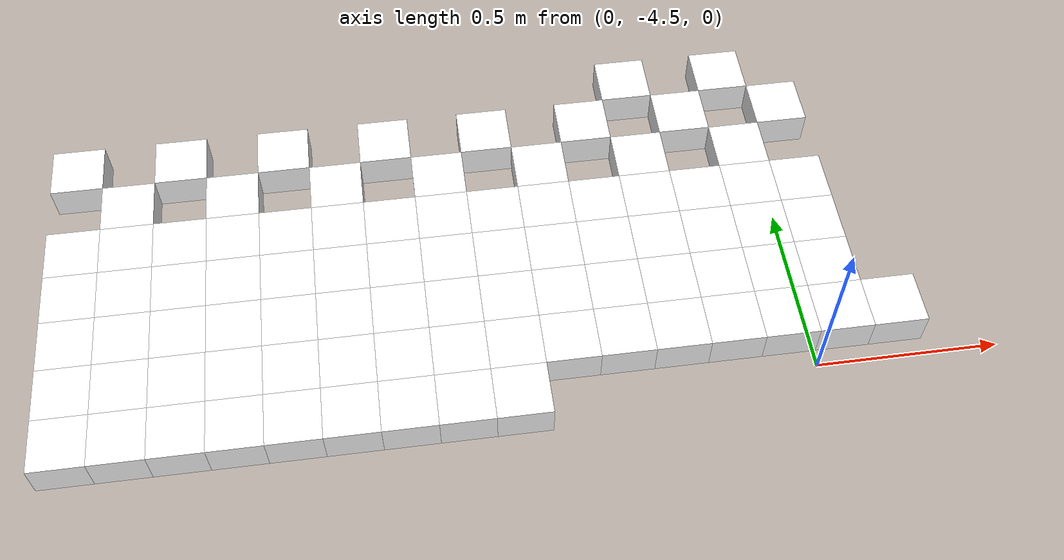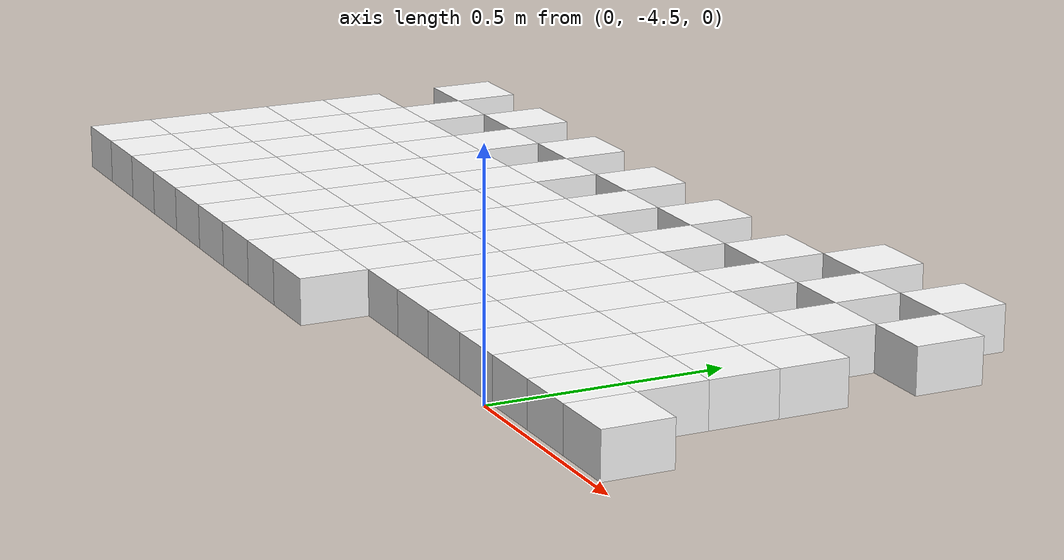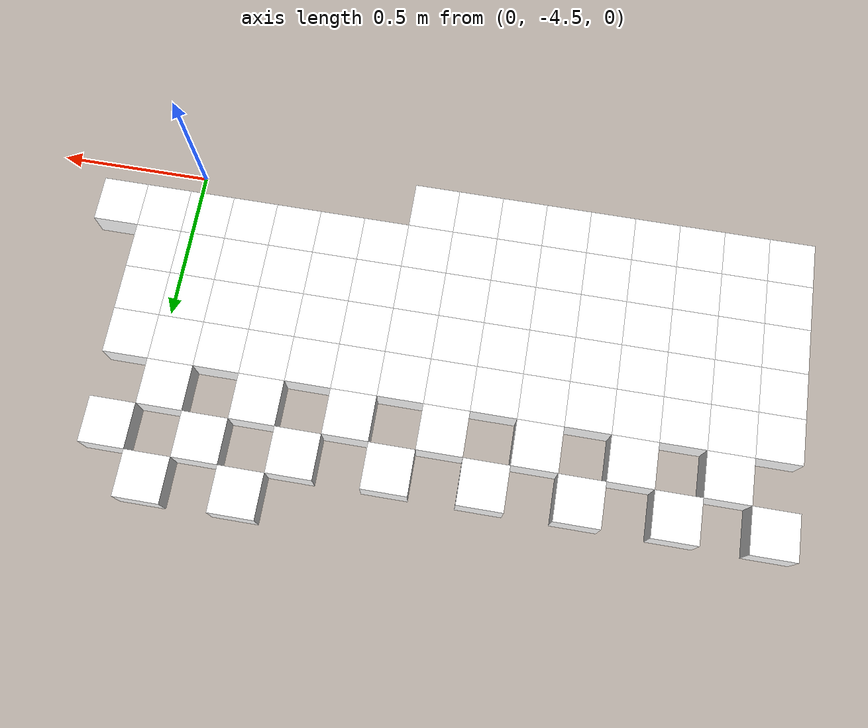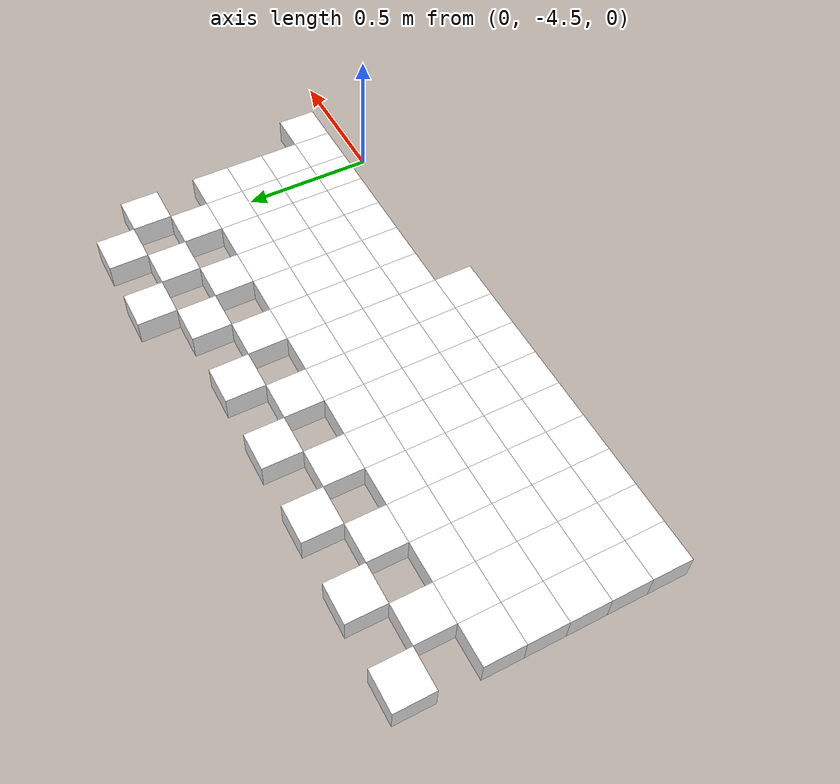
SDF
<sdf version="1.7">
 <world name="default">
  <include><uri>model://sun</uri></include>
  <model name="static_environment">
   <static>true</static>
   <link name="region_604">
    <pose>-2.0003737176152043 -3.599999983373231 0.0 0.0 0.0 4.7123</pose>
    <collision name="region_604_collision">
     <geometry><box><size>0.15 0.15 0.1</size></box></geometry>
     <surface><friction><ode><mu>1.0</mu><mu2>1.0</mu2></ode></friction></surface>
    </collision>
    <visual name="region_604_visual">
     <geometry><box><size>0.15 0.15 0.1</size></box></geometry>
     <material><ambient>1.0 1.0 1.0 1.0</ambient><diffuse>1.0 1.0 1.0 1.0</diffuse></material>
    </visual>
   </link>
   <link name="region_609">
    <pose>-1.8503870652667036 -3.750013329837104 0.0 0.0 0.0 4.7123</pose>
    <collision name="region_609_collision">
     <geometry><box><size>0.15 0.15 0.1</size></box></geometry>
     <surface><friction><ode><mu>1.0</mu><mu2>1.0</mu2></ode></friction></surface>
    </collision>
    <visual name="region_609_visual">
     <geometry><box><size>0.15 0.15 0.1</size></box></geometry>
     <material><ambient>1.0 1.0 1.0 1.0</ambient><diffuse>1.0 1.0 1.0 1.0</diffuse></material>
    </visual>
   </link>
   <link name="region_614">
    <pose>-1.700373718802831 -3.600026677488603 0.0 0.0 0.0 4.7123</pose>
    <collision name="region_614_collision">
     <geometry><box><size>0.15 0.15 0.1</size></box></geometry>
     <surface><friction><ode><mu>1.0</mu><mu2>1.0</mu2></ode></friction></surface>
    </collision>
    <visual name="region_614_visual">
     <geometry><box><size>0.15 0.15 0.1</size></box></geometry>
     <material><ambient>1.0 1.0 1.0 1.0</ambient><diffuse>1.0 1.0 1.0 1.0</diffuse></material>
    </visual>
   </link>
   <link name="region_619">
    <pose>-1.55038706645433 -3.7500400239524754 0.0 0.0 0.0 4.7123</pose>
    <collision name="region_619_collision">
     <geometry><box><size>0.15 0.15 0.1</size></box></geometry>
     <surface><friction><ode><mu>1.0</mu><mu2>1.0</mu2></ode></friction></surface>
    </collision>
    <visual name="region_619_visual">
     <geometry><box><size>0.15 0.15 0.1</size></box></geometry>
     <material><ambient>1.0 1.0 1.0 1.0</ambient><diffuse>1.0 1.0 1.0 1.0</diffuse></material>
    </visual>
   </link>
   <link name="region_624">
    <pose>-1.4003737199904573 -3.6000533716039747 0.0 0.0 0.0 4.7123</pose>
    <collision name="region_624_collision">
     <geometry><box><size>0.15 0.15 0.1</size></box></geometry>
     <surface><friction><ode><mu>1.0</mu><mu2>1.0</mu2></ode></friction></surface>
    </collision>
    <visual name="region_624_visual">
     <geometry><box><size>0.15 0.15 0.1</size></box></geometry>
     <material><ambient>1.0 1.0 1.0 1.0</ambient><diffuse>1.0 1.0 1.0 1.0</diffuse></material>
    </visual>
   </link>
   <link name="region_629">
    <pose>-1.2503870676419564 -3.7500667180678477 0.0 0.0 0.0 4.7123</pose>
    <collision name="region_629_collision">
     <geometry><box><size>0.15 0.15 0.1</size></box></geometry>
     <surface><friction><ode><mu>1.0</mu><mu2>1.0</mu2></ode></friction></surface>
    </collision>
    <visual name="region_629_visual">
     <geometry><box><size>0.15 0.15 0.1</size></box></geometry>
     <material><ambient>1.0 1.0 1.0 1.0</ambient><diffuse>1.0 1.0 1.0 1.0</diffuse></material>
    </visual>
   </link>
   <link name="region_634">
    <pose>-1.1003737211780837 -3.600080065719346 0.0 0.0 0.0 4.7123</pose>
    <collision name="region_634_collision">
     <geometry><box><size>0.15 0.15 0.1</size></box></geometry>
     <surface><friction><ode><mu>1.0</mu><mu2>1.0</mu2></ode></friction></surface>
    </collision>
    <visual name="region_634_visual">
     <geometry><box><size>0.15 0.15 0.1</size></box></geometry>
     <material><ambient>1.0 1.0 1.0 1.0</ambient><diffuse>1.0 1.0 1.0 1.0</diffuse></material>
    </visual>
   </link>
   <link name="region_639">
    <pose>-0.9503870688295828 -3.7500934121832192 0.0 0.0 0.0 4.7123</pose>
    <collision name="region_639_collision">
     <geometry><box><size>0.15 0.15 0.1</size></box></geometry>
     <surface><friction><ode><mu>1.0</mu><mu2>1.0</mu2></ode></friction></surface>
    </collision>
    <visual name="region_639_visual">
     <geometry><box><size>0.15 0.15 0.1</size></box></geometry>
     <material><ambient>1.0 1.0 1.0 1.0</ambient><diffuse>1.0 1.0 1.0 1.0</diffuse></material>
    </visual>
   </link>
   <link name="region_644">
    <pose>-0.8003737223657101 -3.6001067598347176 0.0 0.0 0.0 4.7123</pose>
    <collision name="region_644_collision">
     <geometry><box><size>0.15 0.15 0.1</size></box></geometry>
     <surface><friction><ode><mu>1.0</mu><mu2>1.0</mu2></ode></friction></surface>
    </collision>
    <visual name="region_644_visual">
     <geometry><box><size>0.15 0.15 0.1</size></box></geometry>
     <material><ambient>1.0 1.0 1.0 1.0</ambient><diffuse>1.0 1.0 1.0 1.0</diffuse></material>
    </visual>
   </link>
   <link name="region_649">
    <pose>-0.6503870700172092 -3.7501201062985907 0.0 0.0 0.0 4.7123</pose>
    <collision name="region_649_collision">
     <geometry><box><size>0.15 0.15 0.1</size></box></geometry>
     <surface><friction><ode><mu>1.0</mu><mu2>1.0</mu2></ode></friction></surface>
    </collision>
    <visual name="region_649_visual">
     <geometry><box><size>0.15 0.15 0.1</size></box></geometry>
     <material><ambient>1.0 1.0 1.0 1.0</ambient><diffuse>1.0 1.0 1.0 1.0</diffuse></material>
    </visual>
   </link>
   <link name="region_654">
    <pose>-0.5003737235533365 -3.60013345395009 0.0 0.0 0.0 4.7123</pose>
    <collision name="region_654_collision">
     <geometry><box><size>0.15 0.15 0.1</size></box></geometry>
     <surface><friction><ode><mu>1.0</mu><mu2>1.0</mu2></ode></friction></surface>
    </collision>
    <visual name="region_654_visual">
     <geometry><box><size>0.15 0.15 0.1</size></box></geometry>
     <material><ambient>1.0 1.0 1.0 1.0</ambient><diffuse>1.0 1.0 1.0 1.0</diffuse></material>
    </visual>
   </link>
   <link name="region_658">
    <pose>-0.3503603770894639 -3.4501468016015884 0.0 0.0 0.0 4.7123</pose>
    <collision name="region_658_collision">
     <geometry><box><size>0.15 0.15 0.1</size></box></geometry>
     <surface><friction><ode><mu>1.0</mu><mu2>1.0</mu2></ode></friction></surface>
    </collision>
    <visual name="region_658_visual">
     <geometry><box><size>0.15 0.15 0.1</size></box></geometry>
     <material><ambient>1.0 1.0 1.0 1.0</ambient><diffuse>1.0 1.0 1.0 1.0</diffuse></material>
    </visual>
   </link>
   <link name="region_659">
    <pose>-0.3503870712048358 -3.750146800413963 0.0 0.0 0.0 4.7123</pose>
    <collision name="region_659_collision">
     <geometry><box><size>0.15 0.15 0.1</size></box></geometry>
     <surface><friction><ode><mu>1.0</mu><mu2>1.0</mu2></ode></friction></surface>
    </collision>
    <visual name="region_659_visual">
     <geometry><box><size>0.15 0.15 0.1</size></box></geometry>
     <material><ambient>1.0 1.0 1.0 1.0</ambient><diffuse>1.0 1.0 1.0 1.0</diffuse></material>
    </visual>
   </link>
   <link name="region_664">
    <pose>-0.20037372474096315 -3.6001601480654615 0.0 0.0 0.0 4.7123</pose>
    <collision name="region_664_collision">
     <geometry><box><size>0.15 0.15 0.1</size></box></geometry>
     <surface><friction><ode><mu>1.0</mu><mu2>1.0</mu2></ode></friction></surface>
    </collision>
    <visual name="region_664_visual">
     <geometry><box><size>0.15 0.15 0.1</size></box></geometry>
     <material><ambient>1.0 1.0 1.0 1.0</ambient><diffuse>1.0 1.0 1.0 1.0</diffuse></material>
    </visual>
   </link>
   <link name="region_668">
    <pose>-0.0503603782770905 -3.45017349571696 0.0 0.0 0.0 4.7123</pose>
    <collision name="region_668_collision">
     <geometry><box><size>0.15 0.15 0.1</size></box></geometry>
     <surface><friction><ode><mu>1.0</mu><mu2>1.0</mu2></ode></friction></surface>
    </collision>
    <visual name="region_668_visual">
     <geometry><box><size>0.15 0.15 0.1</size></box></geometry>
     <material><ambient>1.0 1.0 1.0 1.0</ambient><diffuse>1.0 1.0 1.0 1.0</diffuse></material>
    </visual>
   </link>
   <link name="region_669">
    <pose>-0.05038707239246243 -3.7501734945293346 0.0 0.0 0.0 4.7123</pose>
    <collision name="region_669_collision">
     <geometry><box><size>0.15 0.15 0.1</size></box></geometry>
     <surface><friction><ode><mu>1.0</mu><mu2>1.0</mu2></ode></friction></surface>
    </collision>
    <visual name="region_669_visual">
     <geometry><box><size>0.15 0.15 0.1</size></box></geometry>
     <material><ambient>1.0 1.0 1.0 1.0</ambient><diffuse>1.0 1.0 1.0 1.0</diffuse></material>
    </visual>
   </link>
   <link name="region_674">
    <pose>0.09962627407141067 -3.600186842180833 0.0 0.0 0.0 4.7123</pose>
    <collision name="region_674_collision">
     <geometry><box><size>0.15 0.15 0.1</size></box></geometry>
     <surface><friction><ode><mu>1.0</mu><mu2>1.0</mu2></ode></friction></surface>
    </collision>
    <visual name="region_674_visual">
     <geometry><box><size>0.15 0.15 0.1</size></box></geometry>
     <material><ambient>1.0 1.0 1.0 1.0</ambient><diffuse>1.0 1.0 1.0 1.0</diffuse></material>
    </visual>
   </link>
   <link name="region_750">
    <pose>-2.0004004117305763 -3.8999999821856046 0.0 0.0 0.0 4.7123</pose>
    <collision name="region_750_collision">
     <geometry><box><size>0.15 0.15 0.1</size></box></geometry>
     <surface><friction><ode><mu>1.0</mu><mu2>1.0</mu2></ode></friction></surface>
    </collision>
    <visual name="region_750_visual">
     <geometry><box><size>0.15 0.15 0.1</size></box></geometry>
     <material><ambient>1.0 1.0 1.0 1.0</ambient><diffuse>1.0 1.0 1.0 1.0</diffuse></material>
    </visual>
   </link>
   <link name="region_751">
    <pose>-2.000413758788262 -4.049999981591792 0.0 0.0 0.0 4.7123</pose>
    <collision name="region_751_collision">
     <geometry><box><size>0.15 0.15 0.1</size></box></geometry>
     <surface><friction><ode><mu>1.0</mu><mu2>1.0</mu2></ode></friction></surface>
    </collision>
    <visual name="region_751_visual">
     <geometry><box><size>0.15 0.15 0.1</size></box></geometry>
     <material><ambient>1.0 1.0 1.0 1.0</ambient><diffuse>1.0 1.0 1.0 1.0</diffuse></material>
    </visual>
   </link>
   <link name="region_752">
    <pose>-2.000427105845948 -4.199999980997979 0.0 0.0 0.0 4.7123</pose>
    <collision name="region_752_collision">
     <geometry><box><size>0.15 0.15 0.1</size></box></geometry>
     <surface><friction><ode><mu>1.0</mu><mu2>1.0</mu2></ode></friction></surface>
    </collision>
    <visual name="region_752_visual">
     <geometry><box><size>0.15 0.15 0.1</size></box></geometry>
     <material><ambient>1.0 1.0 1.0 1.0</ambient><diffuse>1.0 1.0 1.0 1.0</diffuse></material>
    </visual>
   </link>
   <link name="region_753">
    <pose>-2.000440452903634 -4.349999980404166 0.0 0.0 0.0 4.7123</pose>
    <collision name="region_753_collision">
     <geometry><box><size>0.15 0.15 0.1</size></box></geometry>
     <surface><friction><ode><mu>1.0</mu><mu2>1.0</mu2></ode></friction></surface>
    </collision>
    <visual name="region_753_visual">
     <geometry><box><size>0.15 0.15 0.1</size></box></geometry>
     <material><ambient>1.0 1.0 1.0 1.0</ambient><diffuse>1.0 1.0 1.0 1.0</diffuse></material>
    </visual>
   </link>
   <link name="region_754">
    <pose>-2.0004537999613197 -4.499999979810354 0.0 0.0 0.0 4.7123</pose>
    <collision name="region_754_collision">
     <geometry><box><size>0.15 0.15 0.1</size></box></geometry>
     <surface><friction><ode><mu>1.0</mu><mu2>1.0</mu2></ode></friction></surface>
    </collision>
    <visual name="region_754_visual">
     <geometry><box><size>0.15 0.15 0.1</size></box></geometry>
     <material><ambient>1.0 1.0 1.0 1.0</ambient><diffuse>1.0 1.0 1.0 1.0</diffuse></material>
    </visual>
   </link>
   <link name="region_760">
    <pose>-1.8504004123243896 -3.9000133292432904 0.0 0.0 0.0 4.7123</pose>
    <collision name="region_760_collision">
     <geometry><box><size>0.15 0.15 0.1</size></box></geometry>
     <surface><friction><ode><mu>1.0</mu><mu2>1.0</mu2></ode></friction></surface>
    </collision>
    <visual name="region_760_visual">
     <geometry><box><size>0.15 0.15 0.1</size></box></geometry>
     <material><ambient>1.0 1.0 1.0 1.0</ambient><diffuse>1.0 1.0 1.0 1.0</diffuse></material>
    </visual>
   </link>
   <link name="region_761">
    <pose>-1.8504137593820753 -4.050013328649478 0.0 0.0 0.0 4.7123</pose>
    <collision name="region_761_collision">
     <geometry><box><size>0.15 0.15 0.1</size></box></geometry>
     <surface><friction><ode><mu>1.0</mu><mu2>1.0</mu2></ode></friction></surface>
    </collision>
    <visual name="region_761_visual">
     <geometry><box><size>0.15 0.15 0.1</size></box></geometry>
     <material><ambient>1.0 1.0 1.0 1.0</ambient><diffuse>1.0 1.0 1.0 1.0</diffuse></material>
    </visual>
   </link>
   <link name="region_762">
    <pose>-1.8504271064397613 -4.2000133280556655 0.0 0.0 0.0 4.7123</pose>
    <collision name="region_762_collision">
     <geometry><box><size>0.15 0.15 0.1</size></box></geometry>
     <surface><friction><ode><mu>1.0</mu><mu2>1.0</mu2></ode></friction></surface>
    </collision>
    <visual name="region_762_visual">
     <geometry><box><size>0.15 0.15 0.1</size></box></geometry>
     <material><ambient>1.0 1.0 1.0 1.0</ambient><diffuse>1.0 1.0 1.0 1.0</diffuse></material>
    </visual>
   </link>
   <link name="region_763">
    <pose>-1.850440453497447 -4.350013327461852 0.0 0.0 0.0 4.7123</pose>
    <collision name="region_763_collision">
     <geometry><box><size>0.15 0.15 0.1</size></box></geometry>
     <surface><friction><ode><mu>1.0</mu><mu2>1.0</mu2></ode></friction></surface>
    </collision>
    <visual name="region_763_visual">
     <geometry><box><size>0.15 0.15 0.1</size></box></geometry>
     <material><ambient>1.0 1.0 1.0 1.0</ambient><diffuse>1.0 1.0 1.0 1.0</diffuse></material>
    </visual>
   </link>
   <link name="region_764">
    <pose>-1.850453800555133 -4.500013326868039 0.0 0.0 0.0 4.7123</pose>
    <collision name="region_764_collision">
     <geometry><box><size>0.15 0.15 0.1</size></box></geometry>
     <surface><friction><ode><mu>1.0</mu><mu2>1.0</mu2></ode></friction></surface>
    </collision>
    <visual name="region_764_visual">
     <geometry><box><size>0.15 0.15 0.1</size></box></geometry>
     <material><ambient>1.0 1.0 1.0 1.0</ambient><diffuse>1.0 1.0 1.0 1.0</diffuse></material>
    </visual>
   </link>
   <link name="region_770">
    <pose>-1.7004004129182027 -3.900026676300976 0.0 0.0 0.0 4.7123</pose>
    <collision name="region_770_collision">
     <geometry><box><size>0.15 0.15 0.1</size></box></geometry>
     <surface><friction><ode><mu>1.0</mu><mu2>1.0</mu2></ode></friction></surface>
    </collision>
    <visual name="region_770_visual">
     <geometry><box><size>0.15 0.15 0.1</size></box></geometry>
     <material><ambient>1.0 1.0 1.0 1.0</ambient><diffuse>1.0 1.0 1.0 1.0</diffuse></material>
    </visual>
   </link>
   <link name="region_771">
    <pose>-1.7004137599758886 -4.050026675707164 0.0 0.0 0.0 4.7123</pose>
    <collision name="region_771_collision">
     <geometry><box><size>0.15 0.15 0.1</size></box></geometry>
     <surface><friction><ode><mu>1.0</mu><mu2>1.0</mu2></ode></friction></surface>
    </collision>
    <visual name="region_771_visual">
     <geometry><box><size>0.15 0.15 0.1</size></box></geometry>
     <material><ambient>1.0 1.0 1.0 1.0</ambient><diffuse>1.0 1.0 1.0 1.0</diffuse></material>
    </visual>
   </link>
   <link name="region_772">
    <pose>-1.7004271070335744 -4.200026675113351 0.0 0.0 0.0 4.7123</pose>
    <collision name="region_772_collision">
     <geometry><box><size>0.15 0.15 0.1</size></box></geometry>
     <surface><friction><ode><mu>1.0</mu><mu2>1.0</mu2></ode></friction></surface>
    </collision>
    <visual name="region_772_visual">
     <geometry><box><size>0.15 0.15 0.1</size></box></geometry>
     <material><ambient>1.0 1.0 1.0 1.0</ambient><diffuse>1.0 1.0 1.0 1.0</diffuse></material>
    </visual>
   </link>
   <link name="region_773">
    <pose>-1.7004404540912603 -4.350026674519538 0.0 0.0 0.0 4.7123</pose>
    <collision name="region_773_collision">
     <geometry><box><size>0.15 0.15 0.1</size></box></geometry>
     <surface><friction><ode><mu>1.0</mu><mu2>1.0</mu2></ode></friction></surface>
    </collision>
    <visual name="region_773_visual">
     <geometry><box><size>0.15 0.15 0.1</size></box></geometry>
     <material><ambient>1.0 1.0 1.0 1.0</ambient><diffuse>1.0 1.0 1.0 1.0</diffuse></material>
    </visual>
   </link>
   <link name="region_774">
    <pose>-1.7004538011489463 -4.500026673925725 0.0 0.0 0.0 4.7123</pose>
    <collision name="region_774_collision">
     <geometry><box><size>0.15 0.15 0.1</size></box></geometry>
     <surface><friction><ode><mu>1.0</mu><mu2>1.0</mu2></ode></friction></surface>
    </collision>
    <visual name="region_774_visual">
     <geometry><box><size>0.15 0.15 0.1</size></box></geometry>
     <material><ambient>1.0 1.0 1.0 1.0</ambient><diffuse>1.0 1.0 1.0 1.0</diffuse></material>
    </visual>
   </link>
   <link name="region_780">
    <pose>-1.550400413512016 -3.900040023358662 0.0 0.0 0.0 4.7123</pose>
    <collision name="region_780_collision">
     <geometry><box><size>0.15 0.15 0.1</size></box></geometry>
     <surface><friction><ode><mu>1.0</mu><mu2>1.0</mu2></ode></friction></surface>
    </collision>
    <visual name="region_780_visual">
     <geometry><box><size>0.15 0.15 0.1</size></box></geometry>
     <material><ambient>1.0 1.0 1.0 1.0</ambient><diffuse>1.0 1.0 1.0 1.0</diffuse></material>
    </visual>
   </link>
   <link name="region_781">
    <pose>-1.5504137605697017 -4.05004002276485 0.0 0.0 0.0 4.7123</pose>
    <collision name="region_781_collision">
     <geometry><box><size>0.15 0.15 0.1</size></box></geometry>
     <surface><friction><ode><mu>1.0</mu><mu2>1.0</mu2></ode></friction></surface>
    </collision>
    <visual name="region_781_visual">
     <geometry><box><size>0.15 0.15 0.1</size></box></geometry>
     <material><ambient>1.0 1.0 1.0 1.0</ambient><diffuse>1.0 1.0 1.0 1.0</diffuse></material>
    </visual>
   </link>
   <link name="region_782">
    <pose>-1.5504271076273877 -4.200040022171037 0.0 0.0 0.0 4.7123</pose>
    <collision name="region_782_collision">
     <geometry><box><size>0.15 0.15 0.1</size></box></geometry>
     <surface><friction><ode><mu>1.0</mu><mu2>1.0</mu2></ode></friction></surface>
    </collision>
    <visual name="region_782_visual">
     <geometry><box><size>0.15 0.15 0.1</size></box></geometry>
     <material><ambient>1.0 1.0 1.0 1.0</ambient><diffuse>1.0 1.0 1.0 1.0</diffuse></material>
    </visual>
   </link>
   <link name="region_783">
    <pose>-1.5504404546850736 -4.350040021577224 0.0 0.0 0.0 4.7123</pose>
    <collision name="region_783_collision">
     <geometry><box><size>0.15 0.15 0.1</size></box></geometry>
     <surface><friction><ode><mu>1.0</mu><mu2>1.0</mu2></ode></friction></surface>
    </collision>
    <visual name="region_783_visual">
     <geometry><box><size>0.15 0.15 0.1</size></box></geometry>
     <material><ambient>1.0 1.0 1.0 1.0</ambient><diffuse>1.0 1.0 1.0 1.0</diffuse></material>
    </visual>
   </link>
   <link name="region_784">
    <pose>-1.5504538017427594 -4.500040020983411 0.0 0.0 0.0 4.7123</pose>
    <collision name="region_784_collision">
     <geometry><box><size>0.15 0.15 0.1</size></box></geometry>
     <surface><friction><ode><mu>1.0</mu><mu2>1.0</mu2></ode></friction></surface>
    </collision>
    <visual name="region_784_visual">
     <geometry><box><size>0.15 0.15 0.1</size></box></geometry>
     <material><ambient>1.0 1.0 1.0 1.0</ambient><diffuse>1.0 1.0 1.0 1.0</diffuse></material>
    </visual>
   </link>
   <link name="region_790">
    <pose>-1.400400414105829 -3.9000533704163476 0.0 0.0 0.0 4.7123</pose>
    <collision name="region_790_collision">
     <geometry><box><size>0.15 0.15 0.1</size></box></geometry>
     <surface><friction><ode><mu>1.0</mu><mu2>1.0</mu2></ode></friction></surface>
    </collision>
    <visual name="region_790_visual">
     <geometry><box><size>0.15 0.15 0.1</size></box></geometry>
     <material><ambient>1.0 1.0 1.0 1.0</ambient><diffuse>1.0 1.0 1.0 1.0</diffuse></material>
    </visual>
   </link>
   <link name="region_791">
    <pose>-1.4004137611635148 -4.050053369822535 0.0 0.0 0.0 4.7123</pose>
    <collision name="region_791_collision">
     <geometry><box><size>0.15 0.15 0.1</size></box></geometry>
     <surface><friction><ode><mu>1.0</mu><mu2>1.0</mu2></ode></friction></surface>
    </collision>
    <visual name="region_791_visual">
     <geometry><box><size>0.15 0.15 0.1</size></box></geometry>
     <material><ambient>1.0 1.0 1.0 1.0</ambient><diffuse>1.0 1.0 1.0 1.0</diffuse></material>
    </visual>
   </link>
   <link name="region_792">
    <pose>-1.400427108221201 -4.200053369228723 0.0 0.0 0.0 4.7123</pose>
    <collision name="region_792_collision">
     <geometry><box><size>0.15 0.15 0.1</size></box></geometry>
     <surface><friction><ode><mu>1.0</mu><mu2>1.0</mu2></ode></friction></surface>
    </collision>
    <visual name="region_792_visual">
     <geometry><box><size>0.15 0.15 0.1</size></box></geometry>
     <material><ambient>1.0 1.0 1.0 1.0</ambient><diffuse>1.0 1.0 1.0 1.0</diffuse></material>
    </visual>
   </link>
   <link name="region_793">
    <pose>-1.4004404552788867 -4.35005336863491 0.0 0.0 0.0 4.7123</pose>
    <collision name="region_793_collision">
     <geometry><box><size>0.15 0.15 0.1</size></box></geometry>
     <surface><friction><ode><mu>1.0</mu><mu2>1.0</mu2></ode></friction></surface>
    </collision>
    <visual name="region_793_visual">
     <geometry><box><size>0.15 0.15 0.1</size></box></geometry>
     <material><ambient>1.0 1.0 1.0 1.0</ambient><diffuse>1.0 1.0 1.0 1.0</diffuse></material>
    </visual>
   </link>
   <link name="region_794">
    <pose>-1.4004538023365725 -4.5000533680410975 0.0 0.0 0.0 4.7123</pose>
    <collision name="region_794_collision">
     <geometry><box><size>0.15 0.15 0.1</size></box></geometry>
     <surface><friction><ode><mu>1.0</mu><mu2>1.0</mu2></ode></friction></surface>
    </collision>
    <visual name="region_794_visual">
     <geometry><box><size>0.15 0.15 0.1</size></box></geometry>
     <material><ambient>1.0 1.0 1.0 1.0</ambient><diffuse>1.0 1.0 1.0 1.0</diffuse></material>
    </visual>
   </link>
   <link name="region_800">
    <pose>-1.2504004146996421 -3.900066717474034 0.0 0.0 0.0 4.7123</pose>
    <collision name="region_800_collision">
     <geometry><box><size>0.15 0.15 0.1</size></box></geometry>
     <surface><friction><ode><mu>1.0</mu><mu2>1.0</mu2></ode></friction></surface>
    </collision>
    <visual name="region_800_visual">
     <geometry><box><size>0.15 0.15 0.1</size></box></geometry>
     <material><ambient>1.0 1.0 1.0 1.0</ambient><diffuse>1.0 1.0 1.0 1.0</diffuse></material>
    </visual>
   </link>
   <link name="region_801">
    <pose>-1.2504137617573279 -4.050066716880221 0.0 0.0 0.0 4.7123</pose>
    <collision name="region_801_collision">
     <geometry><box><size>0.15 0.15 0.1</size></box></geometry>
     <surface><friction><ode><mu>1.0</mu><mu2>1.0</mu2></ode></friction></surface>
    </collision>
    <visual name="region_801_visual">
     <geometry><box><size>0.15 0.15 0.1</size></box></geometry>
     <material><ambient>1.0 1.0 1.0 1.0</ambient><diffuse>1.0 1.0 1.0 1.0</diffuse></material>
    </visual>
   </link>
   <link name="region_802">
    <pose>-1.250427108815014 -4.2000667162864085 0.0 0.0 0.0 4.7123</pose>
    <collision name="region_802_collision">
     <geometry><box><size>0.15 0.15 0.1</size></box></geometry>
     <surface><friction><ode><mu>1.0</mu><mu2>1.0</mu2></ode></friction></surface>
    </collision>
    <visual name="region_802_visual">
     <geometry><box><size>0.15 0.15 0.1</size></box></geometry>
     <material><ambient>1.0 1.0 1.0 1.0</ambient><diffuse>1.0 1.0 1.0 1.0</diffuse></material>
    </visual>
   </link>
   <link name="region_803">
    <pose>-1.2504404558726998 -4.350066715692596 0.0 0.0 0.0 4.7123</pose>
    <collision name="region_803_collision">
     <geometry><box><size>0.15 0.15 0.1</size></box></geometry>
     <surface><friction><ode><mu>1.0</mu><mu2>1.0</mu2></ode></friction></surface>
    </collision>
    <visual name="region_803_visual">
     <geometry><box><size>0.15 0.15 0.1</size></box></geometry>
     <material><ambient>1.0 1.0 1.0 1.0</ambient><diffuse>1.0 1.0 1.0 1.0</diffuse></material>
    </visual>
   </link>
   <link name="region_804">
    <pose>-1.2504538029303855 -4.500066715098783 0.0 0.0 0.0 4.7123</pose>
    <collision name="region_804_collision">
     <geometry><box><size>0.15 0.15 0.1</size></box></geometry>
     <surface><friction><ode><mu>1.0</mu><mu2>1.0</mu2></ode></friction></surface>
    </collision>
    <visual name="region_804_visual">
     <geometry><box><size>0.15 0.15 0.1</size></box></geometry>
     <material><ambient>1.0 1.0 1.0 1.0</ambient><diffuse>1.0 1.0 1.0 1.0</diffuse></material>
    </visual>
   </link>
   <link name="region_810">
    <pose>-1.1004004152934552 -3.90008006453172 0.0 0.0 0.0 4.7123</pose>
    <collision name="region_810_collision">
     <geometry><box><size>0.15 0.15 0.1</size></box></geometry>
     <surface><friction><ode><mu>1.0</mu><mu2>1.0</mu2></ode></friction></surface>
    </collision>
    <visual name="region_810_visual">
     <geometry><box><size>0.15 0.15 0.1</size></box></geometry>
     <material><ambient>1.0 1.0 1.0 1.0</ambient><diffuse>1.0 1.0 1.0 1.0</diffuse></material>
    </visual>
   </link>
   <link name="region_811">
    <pose>-1.1004137623511412 -4.050080063937908 0.0 0.0 0.0 4.7123</pose>
    <collision name="region_811_collision">
     <geometry><box><size>0.15 0.15 0.1</size></box></geometry>
     <surface><friction><ode><mu>1.0</mu><mu2>1.0</mu2></ode></friction></surface>
    </collision>
    <visual name="region_811_visual">
     <geometry><box><size>0.15 0.15 0.1</size></box></geometry>
     <material><ambient>1.0 1.0 1.0 1.0</ambient><diffuse>1.0 1.0 1.0 1.0</diffuse></material>
    </visual>
   </link>
   <link name="region_812">
    <pose>-1.1004271094088272 -4.200080063344094 0.0 0.0 0.0 4.7123</pose>
    <collision name="region_812_collision">
     <geometry><box><size>0.15 0.15 0.1</size></box></geometry>
     <surface><friction><ode><mu>1.0</mu><mu2>1.0</mu2></ode></friction></surface>
    </collision>
    <visual name="region_812_visual">
     <geometry><box><size>0.15 0.15 0.1</size></box></geometry>
     <material><ambient>1.0 1.0 1.0 1.0</ambient><diffuse>1.0 1.0 1.0 1.0</diffuse></material>
    </visual>
   </link>
   <link name="region_813">
    <pose>-1.100440456466513 -4.350080062750282 0.0 0.0 0.0 4.7123</pose>
    <collision name="region_813_collision">
     <geometry><box><size>0.15 0.15 0.1</size></box></geometry>
     <surface><friction><ode><mu>1.0</mu><mu2>1.0</mu2></ode></friction></surface>
    </collision>
    <visual name="region_813_visual">
     <geometry><box><size>0.15 0.15 0.1</size></box></geometry>
     <material><ambient>1.0 1.0 1.0 1.0</ambient><diffuse>1.0 1.0 1.0 1.0</diffuse></material>
    </visual>
   </link>
   <link name="region_814">
    <pose>-1.1004538035241989 -4.500080062156469 0.0 0.0 0.0 4.7123</pose>
    <collision name="region_814_collision">
     <geometry><box><size>0.15 0.15 0.1</size></box></geometry>
     <surface><friction><ode><mu>1.0</mu><mu2>1.0</mu2></ode></friction></surface>
    </collision>
    <visual name="region_814_visual">
     <geometry><box><size>0.15 0.15 0.1</size></box></geometry>
     <material><ambient>1.0 1.0 1.0 1.0</ambient><diffuse>1.0 1.0 1.0 1.0</diffuse></material>
    </visual>
   </link>
   <link name="region_820">
    <pose>-0.9504004158872685 -3.9000934115894057 0.0 0.0 0.0 4.7123</pose>
    <collision name="region_820_collision">
     <geometry><box><size>0.15 0.15 0.1</size></box></geometry>
     <surface><friction><ode><mu>1.0</mu><mu2>1.0</mu2></ode></friction></surface>
    </collision>
    <visual name="region_820_visual">
     <geometry><box><size>0.15 0.15 0.1</size></box></geometry>
     <material><ambient>1.0 1.0 1.0 1.0</ambient><diffuse>1.0 1.0 1.0 1.0</diffuse></material>
    </visual>
   </link>
   <link name="region_821">
    <pose>-0.9504137629449545 -4.0500934109955935 0.0 0.0 0.0 4.7123</pose>
    <collision name="region_821_collision">
     <geometry><box><size>0.15 0.15 0.1</size></box></geometry>
     <surface><friction><ode><mu>1.0</mu><mu2>1.0</mu2></ode></friction></surface>
    </collision>
    <visual name="region_821_visual">
     <geometry><box><size>0.15 0.15 0.1</size></box></geometry>
     <material><ambient>1.0 1.0 1.0 1.0</ambient><diffuse>1.0 1.0 1.0 1.0</diffuse></material>
    </visual>
   </link>
   <link name="region_822">
    <pose>-0.9504271100026402 -4.20009341040178 0.0 0.0 0.0 4.7123</pose>
    <collision name="region_822_collision">
     <geometry><box><size>0.15 0.15 0.1</size></box></geometry>
     <surface><friction><ode><mu>1.0</mu><mu2>1.0</mu2></ode></friction></surface>
    </collision>
    <visual name="region_822_visual">
     <geometry><box><size>0.15 0.15 0.1</size></box></geometry>
     <material><ambient>1.0 1.0 1.0 1.0</ambient><diffuse>1.0 1.0 1.0 1.0</diffuse></material>
    </visual>
   </link>
   <link name="region_823">
    <pose>-0.9504404570603262 -4.350093409807967 0.0 0.0 0.0 4.7123</pose>
    <collision name="region_823_collision">
     <geometry><box><size>0.15 0.15 0.1</size></box></geometry>
     <surface><friction><ode><mu>1.0</mu><mu2>1.0</mu2></ode></friction></surface>
    </collision>
    <visual name="region_823_visual">
     <geometry><box><size>0.15 0.15 0.1</size></box></geometry>
     <material><ambient>1.0 1.0 1.0 1.0</ambient><diffuse>1.0 1.0 1.0 1.0</diffuse></material>
    </visual>
   </link>
   <link name="region_824">
    <pose>-0.9504538041180122 -4.500093409214155 0.0 0.0 0.0 4.7123</pose>
    <collision name="region_824_collision">
     <geometry><box><size>0.15 0.15 0.1</size></box></geometry>
     <surface><friction><ode><mu>1.0</mu><mu2>1.0</mu2></ode></friction></surface>
    </collision>
    <visual name="region_824_visual">
     <geometry><box><size>0.15 0.15 0.1</size></box></geometry>
     <material><ambient>1.0 1.0 1.0 1.0</ambient><diffuse>1.0 1.0 1.0 1.0</diffuse></material>
    </visual>
   </link>
   <link name="region_830">
    <pose>-0.8004004164810818 -3.9001067586470914 0.0 0.0 0.0 4.7123</pose>
    <collision name="region_830_collision">
     <geometry><box><size>0.15 0.15 0.1</size></box></geometry>
     <surface><friction><ode><mu>1.0</mu><mu2>1.0</mu2></ode></friction></surface>
    </collision>
    <visual name="region_830_visual">
     <geometry><box><size>0.15 0.15 0.1</size></box></geometry>
     <material><ambient>1.0 1.0 1.0 1.0</ambient><diffuse>1.0 1.0 1.0 1.0</diffuse></material>
    </visual>
   </link>
   <link name="region_831">
    <pose>-0.8004137635387678 -4.050106758053279 0.0 0.0 0.0 4.7123</pose>
    <collision name="region_831_collision">
     <geometry><box><size>0.15 0.15 0.1</size></box></geometry>
     <surface><friction><ode><mu>1.0</mu><mu2>1.0</mu2></ode></friction></surface>
    </collision>
    <visual name="region_831_visual">
     <geometry><box><size>0.15 0.15 0.1</size></box></geometry>
     <material><ambient>1.0 1.0 1.0 1.0</ambient><diffuse>1.0 1.0 1.0 1.0</diffuse></material>
    </visual>
   </link>
   <link name="region_832">
    <pose>-0.8004271105964536 -4.200106757459467 0.0 0.0 0.0 4.7123</pose>
    <collision name="region_832_collision">
     <geometry><box><size>0.15 0.15 0.1</size></box></geometry>
     <surface><friction><ode><mu>1.0</mu><mu2>1.0</mu2></ode></friction></surface>
    </collision>
    <visual name="region_832_visual">
     <geometry><box><size>0.15 0.15 0.1</size></box></geometry>
     <material><ambient>1.0 1.0 1.0 1.0</ambient><diffuse>1.0 1.0 1.0 1.0</diffuse></material>
    </visual>
   </link>
   <link name="region_833">
    <pose>-0.8004404576541395 -4.350106756865653 0.0 0.0 0.0 4.7123</pose>
    <collision name="region_833_collision">
     <geometry><box><size>0.15 0.15 0.1</size></box></geometry>
     <surface><friction><ode><mu>1.0</mu><mu2>1.0</mu2></ode></friction></surface>
    </collision>
    <visual name="region_833_visual">
     <geometry><box><size>0.15 0.15 0.1</size></box></geometry>
     <material><ambient>1.0 1.0 1.0 1.0</ambient><diffuse>1.0 1.0 1.0 1.0</diffuse></material>
    </visual>
   </link>
   <link name="region_834">
    <pose>-0.8004538047118255 -4.50010675627184 0.0 0.0 0.0 4.7123</pose>
    <collision name="region_834_collision">
     <geometry><box><size>0.15 0.15 0.1</size></box></geometry>
     <surface><friction><ode><mu>1.0</mu><mu2>1.0</mu2></ode></friction></surface>
    </collision>
    <visual name="region_834_visual">
     <geometry><box><size>0.15 0.15 0.1</size></box></geometry>
     <material><ambient>1.0 1.0 1.0 1.0</ambient><diffuse>1.0 1.0 1.0 1.0</diffuse></material>
    </visual>
   </link>
   <link name="region_840">
    <pose>-0.6504004170748949 -3.900120105704777 0.0 0.0 0.0 4.7123</pose>
    <collision name="region_840_collision">
     <geometry><box><size>0.15 0.15 0.1</size></box></geometry>
     <surface><friction><ode><mu>1.0</mu><mu2>1.0</mu2></ode></friction></surface>
    </collision>
    <visual name="region_840_visual">
     <geometry><box><size>0.15 0.15 0.1</size></box></geometry>
     <material><ambient>1.0 1.0 1.0 1.0</ambient><diffuse>1.0 1.0 1.0 1.0</diffuse></material>
    </visual>
   </link>
   <link name="region_841">
    <pose>-0.6504137641325809 -4.050120105110965 0.0 0.0 0.0 4.7123</pose>
    <collision name="region_841_collision">
     <geometry><box><size>0.15 0.15 0.1</size></box></geometry>
     <surface><friction><ode><mu>1.0</mu><mu2>1.0</mu2></ode></friction></surface>
    </collision>
    <visual name="region_841_visual">
     <geometry><box><size>0.15 0.15 0.1</size></box></geometry>
     <material><ambient>1.0 1.0 1.0 1.0</ambient><diffuse>1.0 1.0 1.0 1.0</diffuse></material>
    </visual>
   </link>
   <link name="region_842">
    <pose>-0.6504271111902666 -4.200120104517152 0.0 0.0 0.0 4.7123</pose>
    <collision name="region_842_collision">
     <geometry><box><size>0.15 0.15 0.1</size></box></geometry>
     <surface><friction><ode><mu>1.0</mu><mu2>1.0</mu2></ode></friction></surface>
    </collision>
    <visual name="region_842_visual">
     <geometry><box><size>0.15 0.15 0.1</size></box></geometry>
     <material><ambient>1.0 1.0 1.0 1.0</ambient><diffuse>1.0 1.0 1.0 1.0</diffuse></material>
    </visual>
   </link>
   <link name="region_843">
    <pose>-0.6504404582479526 -4.35012010392334 0.0 0.0 0.0 4.7123</pose>
    <collision name="region_843_collision">
     <geometry><box><size>0.15 0.15 0.1</size></box></geometry>
     <surface><friction><ode><mu>1.0</mu><mu2>1.0</mu2></ode></friction></surface>
    </collision>
    <visual name="region_843_visual">
     <geometry><box><size>0.15 0.15 0.1</size></box></geometry>
     <material><ambient>1.0 1.0 1.0 1.0</ambient><diffuse>1.0 1.0 1.0 1.0</diffuse></material>
    </visual>
   </link>
   <link name="region_850">
    <pose>-0.5004004176687082 -3.900133452762463 0.0 0.0 0.0 4.7123</pose>
    <collision name="region_850_collision">
     <geometry><box><size>0.15 0.15 0.1</size></box></geometry>
     <surface><friction><ode><mu>1.0</mu><mu2>1.0</mu2></ode></friction></surface>
    </collision>
    <visual name="region_850_visual">
     <geometry><box><size>0.15 0.15 0.1</size></box></geometry>
     <material><ambient>1.0 1.0 1.0 1.0</ambient><diffuse>1.0 1.0 1.0 1.0</diffuse></material>
    </visual>
   </link>
   <link name="region_851">
    <pose>-0.5004137647263942 -4.050133452168651 0.0 0.0 0.0 4.7123</pose>
    <collision name="region_851_collision">
     <geometry><box><size>0.15 0.15 0.1</size></box></geometry>
     <surface><friction><ode><mu>1.0</mu><mu2>1.0</mu2></ode></friction></surface>
    </collision>
    <visual name="region_851_visual">
     <geometry><box><size>0.15 0.15 0.1</size></box></geometry>
     <material><ambient>1.0 1.0 1.0 1.0</ambient><diffuse>1.0 1.0 1.0 1.0</diffuse></material>
    </visual>
   </link>
   <link name="region_852">
    <pose>-0.50042711178408 -4.200133451574838 0.0 0.0 0.0 4.7123</pose>
    <collision name="region_852_collision">
     <geometry><box><size>0.15 0.15 0.1</size></box></geometry>
     <surface><friction><ode><mu>1.0</mu><mu2>1.0</mu2></ode></friction></surface>
    </collision>
    <visual name="region_852_visual">
     <geometry><box><size>0.15 0.15 0.1</size></box></geometry>
     <material><ambient>1.0 1.0 1.0 1.0</ambient><diffuse>1.0 1.0 1.0 1.0</diffuse></material>
    </visual>
   </link>
   <link name="region_853">
    <pose>-0.5004404588417659 -4.350133450981025 0.0 0.0 0.0 4.7123</pose>
    <collision name="region_853_collision">
     <geometry><box><size>0.15 0.15 0.1</size></box></geometry>
     <surface><friction><ode><mu>1.0</mu><mu2>1.0</mu2></ode></friction></surface>
    </collision>
    <visual name="region_853_visual">
     <geometry><box><size>0.15 0.15 0.1</size></box></geometry>
     <material><ambient>1.0 1.0 1.0 1.0</ambient><diffuse>1.0 1.0 1.0 1.0</diffuse></material>
    </visual>
   </link>
   <link name="region_860">
    <pose>-0.35040041826252155 -3.9001467998201487 0.0 0.0 0.0 4.7123</pose>
    <collision name="region_860_collision">
     <geometry><box><size>0.15 0.15 0.1</size></box></geometry>
     <surface><friction><ode><mu>1.0</mu><mu2>1.0</mu2></ode></friction></surface>
    </collision>
    <visual name="region_860_visual">
     <geometry><box><size>0.15 0.15 0.1</size></box></geometry>
     <material><ambient>1.0 1.0 1.0 1.0</ambient><diffuse>1.0 1.0 1.0 1.0</diffuse></material>
    </visual>
   </link>
   <link name="region_861">
    <pose>-0.3504137653202075 -4.0501467992263365 0.0 0.0 0.0 4.7123</pose>
    <collision name="region_861_collision">
     <geometry><box><size>0.15 0.15 0.1</size></box></geometry>
     <surface><friction><ode><mu>1.0</mu><mu2>1.0</mu2></ode></friction></surface>
    </collision>
    <visual name="region_861_visual">
     <geometry><box><size>0.15 0.15 0.1</size></box></geometry>
     <material><ambient>1.0 1.0 1.0 1.0</ambient><diffuse>1.0 1.0 1.0 1.0</diffuse></material>
    </visual>
   </link>
   <link name="region_862">
    <pose>-0.35042711237789326 -4.200146798632524 0.0 0.0 0.0 4.7123</pose>
    <collision name="region_862_collision">
     <geometry><box><size>0.15 0.15 0.1</size></box></geometry>
     <surface><friction><ode><mu>1.0</mu><mu2>1.0</mu2></ode></friction></surface>
    </collision>
    <visual name="region_862_visual">
     <geometry><box><size>0.15 0.15 0.1</size></box></geometry>
     <material><ambient>1.0 1.0 1.0 1.0</ambient><diffuse>1.0 1.0 1.0 1.0</diffuse></material>
    </visual>
   </link>
   <link name="region_863">
    <pose>-0.3504404594355792 -4.350146798038711 0.0 0.0 0.0 4.7123</pose>
    <collision name="region_863_collision">
     <geometry><box><size>0.15 0.15 0.1</size></box></geometry>
     <surface><friction><ode><mu>1.0</mu><mu2>1.0</mu2></ode></friction></surface>
    </collision>
    <visual name="region_863_visual">
     <geometry><box><size>0.15 0.15 0.1</size></box></geometry>
     <material><ambient>1.0 1.0 1.0 1.0</ambient><diffuse>1.0 1.0 1.0 1.0</diffuse></material>
    </visual>
   </link>
   <link name="region_870">
    <pose>-0.20040041885633486 -3.9001601468778353 0.0 0.0 0.0 4.7123</pose>
    <collision name="region_870_collision">
     <geometry><box><size>0.15 0.15 0.1</size></box></geometry>
     <surface><friction><ode><mu>1.0</mu><mu2>1.0</mu2></ode></friction></surface>
    </collision>
    <visual name="region_870_visual">
     <geometry><box><size>0.15 0.15 0.1</size></box></geometry>
     <material><ambient>1.0 1.0 1.0 1.0</ambient><diffuse>1.0 1.0 1.0 1.0</diffuse></material>
    </visual>
   </link>
   <link name="region_871">
    <pose>-0.20041376591402082 -4.050160146284022 0.0 0.0 0.0 4.7123</pose>
    <collision name="region_871_collision">
     <geometry><box><size>0.15 0.15 0.1</size></box></geometry>
     <surface><friction><ode><mu>1.0</mu><mu2>1.0</mu2></ode></friction></surface>
    </collision>
    <visual name="region_871_visual">
     <geometry><box><size>0.15 0.15 0.1</size></box></geometry>
     <material><ambient>1.0 1.0 1.0 1.0</ambient><diffuse>1.0 1.0 1.0 1.0</diffuse></material>
    </visual>
   </link>
   <link name="region_872">
    <pose>-0.20042711297170657 -4.20016014569021 0.0 0.0 0.0 4.7123</pose>
    <collision name="region_872_collision">
     <geometry><box><size>0.15 0.15 0.1</size></box></geometry>
     <surface><friction><ode><mu>1.0</mu><mu2>1.0</mu2></ode></friction></surface>
    </collision>
    <visual name="region_872_visual">
     <geometry><box><size>0.15 0.15 0.1</size></box></geometry>
     <material><ambient>1.0 1.0 1.0 1.0</ambient><diffuse>1.0 1.0 1.0 1.0</diffuse></material>
    </visual>
   </link>
   <link name="region_873">
    <pose>-0.20044046002939253 -4.350160145096397 0.0 0.0 0.0 4.7123</pose>
    <collision name="region_873_collision">
     <geometry><box><size>0.15 0.15 0.1</size></box></geometry>
     <surface><friction><ode><mu>1.0</mu><mu2>1.0</mu2></ode></friction></surface>
    </collision>
    <visual name="region_873_visual">
     <geometry><box><size>0.15 0.15 0.1</size></box></geometry>
     <material><ambient>1.0 1.0 1.0 1.0</ambient><diffuse>1.0 1.0 1.0 1.0</diffuse></material>
    </visual>
   </link>
   <link name="region_880">
    <pose>-0.05040041945014817 -3.900173493935521 0.0 0.0 0.0 4.7123</pose>
    <collision name="region_880_collision">
     <geometry><box><size>0.15 0.15 0.1</size></box></geometry>
     <surface><friction><ode><mu>1.0</mu><mu2>1.0</mu2></ode></friction></surface>
    </collision>
    <visual name="region_880_visual">
     <geometry><box><size>0.15 0.15 0.1</size></box></geometry>
     <material><ambient>1.0 1.0 1.0 1.0</ambient><diffuse>1.0 1.0 1.0 1.0</diffuse></material>
    </visual>
   </link>
   <link name="region_881">
    <pose>-0.050413766507834135 -4.050173493341709 0.0 0.0 0.0 4.7123</pose>
    <collision name="region_881_collision">
     <geometry><box><size>0.15 0.15 0.1</size></box></geometry>
     <surface><friction><ode><mu>1.0</mu><mu2>1.0</mu2></ode></friction></surface>
    </collision>
    <visual name="region_881_visual">
     <geometry><box><size>0.15 0.15 0.1</size></box></geometry>
     <material><ambient>1.0 1.0 1.0 1.0</ambient><diffuse>1.0 1.0 1.0 1.0</diffuse></material>
    </visual>
   </link>
   <link name="region_882">
    <pose>-0.05042711356551988 -4.200173492747895 0.0 0.0 0.0 4.7123</pose>
    <collision name="region_882_collision">
     <geometry><box><size>0.15 0.15 0.1</size></box></geometry>
     <surface><friction><ode><mu>1.0</mu><mu2>1.0</mu2></ode></friction></surface>
    </collision>
    <visual name="region_882_visual">
     <geometry><box><size>0.15 0.15 0.1</size></box></geometry>
     <material><ambient>1.0 1.0 1.0 1.0</ambient><diffuse>1.0 1.0 1.0 1.0</diffuse></material>
    </visual>
   </link>
   <link name="region_883">
    <pose>-0.05044046062320584 -4.350173492154083 0.0 0.0 0.0 4.7123</pose>
    <collision name="region_883_collision">
     <geometry><box><size>0.15 0.15 0.1</size></box></geometry>
     <surface><friction><ode><mu>1.0</mu><mu2>1.0</mu2></ode></friction></surface>
    </collision>
    <visual name="region_883_visual">
     <geometry><box><size>0.15 0.15 0.1</size></box></geometry>
     <material><ambient>1.0 1.0 1.0 1.0</ambient><diffuse>1.0 1.0 1.0 1.0</diffuse></material>
    </visual>
   </link>
   <link name="region_890">
    <pose>0.09959957995603874 -3.900186840993207 0.0 0.0 0.0 4.7123</pose>
    <collision name="region_890_collision">
     <geometry><box><size>0.15 0.15 0.1</size></box></geometry>
     <surface><friction><ode><mu>1.0</mu><mu2>1.0</mu2></ode></friction></surface>
    </collision>
    <visual name="region_890_visual">
     <geometry><box><size>0.15 0.15 0.1</size></box></geometry>
     <material><ambient>1.0 1.0 1.0 1.0</ambient><diffuse>1.0 1.0 1.0 1.0</diffuse></material>
    </visual>
   </link>
   <link name="region_891">
    <pose>0.099586232898353 -4.050186840399395 0.0 0.0 0.0 4.7123</pose>
    <collision name="region_891_collision">
     <geometry><box><size>0.15 0.15 0.1</size></box></geometry>
     <surface><friction><ode><mu>1.0</mu><mu2>1.0</mu2></ode></friction></surface>
    </collision>
    <visual name="region_891_visual">
     <geometry><box><size>0.15 0.15 0.1</size></box></geometry>
     <material><ambient>1.0 1.0 1.0 1.0</ambient><diffuse>1.0 1.0 1.0 1.0</diffuse></material>
    </visual>
   </link>
   <link name="region_892">
    <pose>0.09957288584066681 -4.200186839805582 0.0 0.0 0.0 4.7123</pose>
    <collision name="region_892_collision">
     <geometry><box><size>0.15 0.15 0.1</size></box></geometry>
     <surface><friction><ode><mu>1.0</mu><mu2>1.0</mu2></ode></friction></surface>
    </collision>
    <visual name="region_892_visual">
     <geometry><box><size>0.15 0.15 0.1</size></box></geometry>
     <material><ambient>1.0 1.0 1.0 1.0</ambient><diffuse>1.0 1.0 1.0 1.0</diffuse></material>
    </visual>
   </link>
   <link name="region_893">
    <pose>0.09955953878298107 -4.350186839211768 0.0 0.0 0.0 4.7123</pose>
    <collision name="region_893_collision">
     <geometry><box><size>0.15 0.15 0.1</size></box></geometry>
     <surface><friction><ode><mu>1.0</mu><mu2>1.0</mu2></ode></friction></surface>
    </collision>
    <visual name="region_893_visual">
     <geometry><box><size>0.15 0.15 0.1</size></box></geometry>
     <material><ambient>1.0 1.0 1.0 1.0</ambient><diffuse>1.0 1.0 1.0 1.0</diffuse></material>
    </visual>
   </link>
   <link name="region_903">
    <pose>0.24955953818916798 -4.350200186269454 0.0 0.0 0.0 4.7123</pose>
    <collision name="region_903_collision">
     <geometry><box><size>0.15 0.15 0.1</size></box></geometry>
     <surface><friction><ode><mu>1.0</mu><mu2>1.0</mu2></ode></friction></surface>
    </collision>
    <visual name="region_903_visual">
     <geometry><box><size>0.15 0.15 0.1</size></box></geometry>
     <material><ambient>1.0 1.0 1.0 1.0</ambient><diffuse>1.0 1.0 1.0 1.0</diffuse></material>
    </visual>
   </link>
  </model>
 </world>
</sdf>
